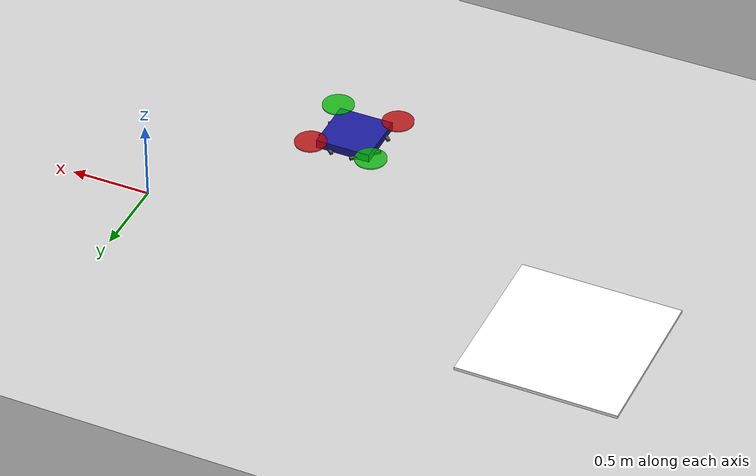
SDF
<?xml version="1.0"?>
<sdf version="1.8">
  <world name="drone_world">
    <physics name="1ms" type="dart">
      <max_step_size>0.001</max_step_size>
      <real_time_factor>1.0</real_time_factor>
      <ode><solver><type>quick</type></solver></ode>
    </physics>

    <!-- Required plugins -->
    <plugin filename="gz-sim-physics-system" name="gz::sim::systems::Physics"></plugin>
    <plugin filename="gz-sim-scene-broadcaster-system" name="gz::sim::systems::SceneBroadcaster"></plugin>
    <plugin filename="gz-sim-sensors-system" name="gz::sim::systems::Sensors">
      <render_engine>ogre2</render_engine>
    </plugin>
    <plugin filename="gz-sim-user-commands-system" name="gz::sim::systems::UserCommands"></plugin>
    <plugin filename="gz-sim-buoyancy-system" name="gz::sim::systems::Buoyancy">
      <uniform_fluid_density>1.2</uniform_fluid_density>
    </plugin>

    <!-- Light source -->
    <light type="directional" name="sun">
      <cast_shadows>true</cast_shadows>
      <pose>0 0 10 0 0 0</pose>
      <diffuse>0.8 0.8 0.8 1</diffuse>
      <specular>0.2 0.2 0.2 1</specular>
      <direction>-0.5 0.1 -0.9</direction>
    </light>

    <!-- Ground plane -->
    <model name="ground_plane">
      <static>true</static>
      <link name="link">
        <collision name="collision">
          <geometry>
            <plane>
              <normal>0 0 1</normal>
              <size>100 100</size>
            </plane>
          </geometry>
        </collision>
        <visual name="visual">
          <geometry>
            <plane>
              <normal>0 0 1</normal>
              <size>100 100</size>
            </plane>
          </geometry>
          <material>
            <ambient>0.8 0.8 0.8 1</ambient>
            <diffuse>0.8 0.8 0.8 1</diffuse>
          </material>
        </visual>
      </link>
    </model>

    <!-- Quadcopter model -->
    <model name="drone">
      <pose>-0.9 -1 0 0 0 0</pose> <!-- Initial position at [0, 0, 0] -->
      <!-- Root link as base_link -->
      <link name="base_link">
        <pose>0 0 0 0 0 0</pose>
        <inertial>
          <mass>1.5</mass>
          <inertia>
            <ixx>0.0347</ixx>
            <ixy>0</ixy>
            <ixz>0</ixz>
            <iyy>0.0347</iyy>
            <iyz>0</iyz>
            <izz>0.0693</izz>
          </inertia>
        </inertial>
        <collision name="collision">
          <geometry>
            <box>
              <size>0.35 0.35 0.1</size>
            </box>
          </geometry>
        </collision>
        <visual name="visual">
          <geometry>
            <box>
              <size>0.35 0.35 0.1</size>
            </box>
          </geometry>
          <material>
            <ambient>0.1 0.1 0.6 1</ambient>
            <diffuse>0.1 0.1 0.6 1</diffuse>
          </material>
        </visual>

        <!-- Camera -->
        <sensor name="camera" type="camera">
          <pose>0 0 -0.05 1.5707 0 0</pose>
          <camera>
            <horizontal_fov>0.5</horizontal_fov>
            <image>
              <width>640</width>
              <height>480</height>
            </image>
            <clip>
              <near>0.1</near>
              <far>100</far>
            </clip>
          </camera>
          <always_on>1</always_on>
          <update_rate>30</update_rate>
          <visualize>true</visualize>
          <topic>/camera</topic>
        </sensor>

        <!-- Arms -->
        <visual name="arm1">
          <pose>0.13 0.13 0 0 0 0.785</pose>
          <geometry>
            <box>
              <size>0.02 0.2 0.02</size>
            </box>
          </geometry>
          <material>
            <ambient>0.3 0.3 0.3 1</ambient>
            <diffuse>0.3 0.3 0.3 1</diffuse>
          </material>
        </visual>

        <visual name="arm2">
          <pose>-0.13 0.13 0 0 0 -0.785</pose>
          <geometry>
            <box>
              <size>0.02 0.2 0.02</size>
            </box>
          </geometry>
          <material>
            <ambient>0.3 0.3 0.3 1</ambient>
            <diffuse>0.3 0.3 0.3 1</diffuse>
          </material>
        </visual>

        <visual name="arm3">
          <pose>-0.13 -0.13 0 0 0 0.785</pose>
          <geometry>
            <box>
              <size>0.02 0.2 0.02</size>
            </box>
          </geometry>
          <material>
            <ambient>0.3 0.3 0.3 1</ambient>
            <diffuse>0.3 0.3 0.3 1</diffuse>
          </material>
        </visual>

        <visual name="arm4">
          <pose>0.13 -0.13 0 0 0 -0.785</pose>
          <geometry>
            <box>
              <size>0.02 0.2 0.02</size>
            </box>
          </geometry>
          <material>
            <ambient>0.3 0.3 0.3 1</ambient>
            <diffuse>0.3 0.3 0.3 1</diffuse>
          </material>
        </visual>
      </link>

      <!-- Rotor links -->
      <link name="rotor1">
        <pose>0.2 0.2 0.05 0 0 0</pose>
        <inertial>
          <mass>0.05</mass>
          <inertia>
            <ixx>0.0001</ixx>
            <ixy>0</ixy>
            <ixz>0</ixz>
            <iyy>0.0001</iyy>
            <iyz>0</iyz>
            <izz>0.0001</izz>
          </inertia>
        </inertial>
        <visual name="visual">
          <geometry>
            <cylinder>
              <radius>0.1</radius>
              <length>0.01</length>
            </cylinder>
          </geometry>
          <material>
            <ambient>0.7 0.0 0.0 0.8</ambient>
            <diffuse>0.7 0.0 0.0 0.8</diffuse>
          </material>
        </visual>
      </link>

      <link name="rotor2">
        <pose>-0.2 0.2 0.05 0 0 0</pose>
        <inertial>
          <mass>0.05</mass>
          <inertia>
            <ixx>0.0001</ixx>
            <ixy>0</ixy>
            <ixz>0</ixz>
            <iyy>0.0001</iyy>
            <iyz>0</iyz>
            <izz>0.0001</izz>
          </inertia>
        </inertial>
        <visual name="visual">
          <geometry>
            <cylinder>
              <radius>0.1</radius>
              <length>0.01</length>
            </cylinder>
          </geometry>
          <material>
            <ambient>0.0 0.7 0.0 0.8</ambient>
            <diffuse>0.0 0.7 0.0 0.8</diffuse>
          </material>
        </visual>
      </link>

      <link name="rotor3">
        <pose>-0.2 -0.2 0.05 0 0 0</pose>
        <inertial>
          <mass>0.05</mass>
          <inertia>
            <ixx>0.0001</ixx>
            <ixy>0</ixy>
            <ixz>0</ixz>
            <iyy>0.0001</iyy>
            <iyz>0</iyz>
            <izz>0.0001</izz>
          </inertia>
        </inertial>
        <visual name="visual">
          <geometry>
            <cylinder>
              <radius>0.1</radius>
              <length>0.01</length>
            </cylinder>
          </geometry>
          <material>
            <ambient>0.7 0.0 0.0 0.8</ambient>
            <diffuse>0.7 0.0 0.0 0.8</diffuse>
          </material>
        </visual>
      </link>

      <link name="rotor4">
        <pose>0.2 -0.2 0.05 0 0 0</pose>
        <inertial>
          <mass>0.05</mass>
          <inertia>
            <ixx>0.0001</ixx>
            <ixy>0</ixy>
            <ixz>0</ixz>
            <iyy>0.0001</iyy>
            <iyz>0</iyz>
            <izz>0.0001</izz>
          </inertia>
        </inertial>
        <visual name="visual">
          <geometry>
            <cylinder>
              <radius>0.1</radius>
              <length>0.01</length>
            </cylinder>
          </geometry>
          <material>
            <ambient>0.0 0.7 0.0 0.8</ambient>
            <diffuse>0.0 0.7 0.0 0.8</diffuse>
          </material>
        </visual>
      </link>

      <!-- Joints referencing base_link as parent -->
      <joint name="rotor1_joint" type="revolute">
        <parent>base_link</parent>
        <child>rotor1</child>
        <axis>
          <xyz>0 0 1</xyz>
          <limit>
            <lower>-1e16</lower>
            <upper>1e16</upper>
          </limit>
          <dynamics>
            <damping>0.05</damping>
          </dynamics>
        </axis>
      </joint>

      <joint name="rotor2_joint" type="revolute">
        <parent>base_link</parent>
        <child>rotor2</child>
        <axis>
          <xyz>0 0 1</xyz>
          <limit>
            <lower>-1e16</lower>
            <upper>1e16</upper>
          </limit>
          <dynamics>
            <damping>0.05</damping>
          </dynamics>
        </axis>
      </joint>

      <joint name="rotor3_joint" type="revolute">
        <parent>base_link</parent>
        <child>rotor3</child>
        <axis>
          <xyz>0 0 1</xyz>
          <limit>
            <lower>-1e16</lower>
            <upper>1e16</upper>
          </limit>
          <dynamics>
            <damping>0.05</damping>
          </dynamics>
        </axis>
      </joint>

      <joint name="rotor4_joint" type="revolute">
        <parent>base_link</parent>
        <child>rotor4</child>
        <axis>
          <xyz>0 0 1</xyz>
          <limit>
            <lower>-1e16</lower>
            <upper>1e16</upper>
          </limit>
          <dynamics>
            <damping>0.05</damping>
          </dynamics>
        </axis>
      </joint>

      <static>false</static>

      <!-- gazebo_ros2_control plugin -->
      <plugin filename="libgazebo_ros2_control.so" name="gazebo_ros2_control">
        <parameters>/home/anuja/drone_project_ws/src/drone_simulation/config/config.yaml</parameters>
      </plugin>

      <!-- Added plugin for pose control -->
      <plugin filename="libgazebo_ros_p3d.so" name="gazebo_ros_control">
        <topicName>/drone/set_pose</topicName>
        <bodyName>base_link</bodyName>
      </plugin>
    </model>

    <!-- Single QR pattern target -->
    <model name="qr_pattern_1">
      <pose>-2.8 0.2 0.01 0 0 0</pose>
      <static>true</static>
      <link name="link">
        <visual name="visual">
          <geometry>
            <box>
              <size>1.0 1.0 0.02</size>
            </box>
          </geometry>
          <material>
            <ambient>1 1 1 1</ambient>
            <diffuse>1 1 1 1</diffuse>
            <specular>0.5 0.5 0.5 1</specular>
            <pbr>
              <metal>
                <albedo_map>file:///home/anuja/drone_project_ws/src/drone_simulation/worlds/qr_code.png</albedo_map>
              </metal>
            </pbr>
          </material>
        </visual>
        <collision name="collision">
          <geometry>
            <box>
              <size>0.8 0.8 0.02</size>
            </box>
          </geometry>
        </collision>
      </link>
    </model>
  </world>
</sdf>
